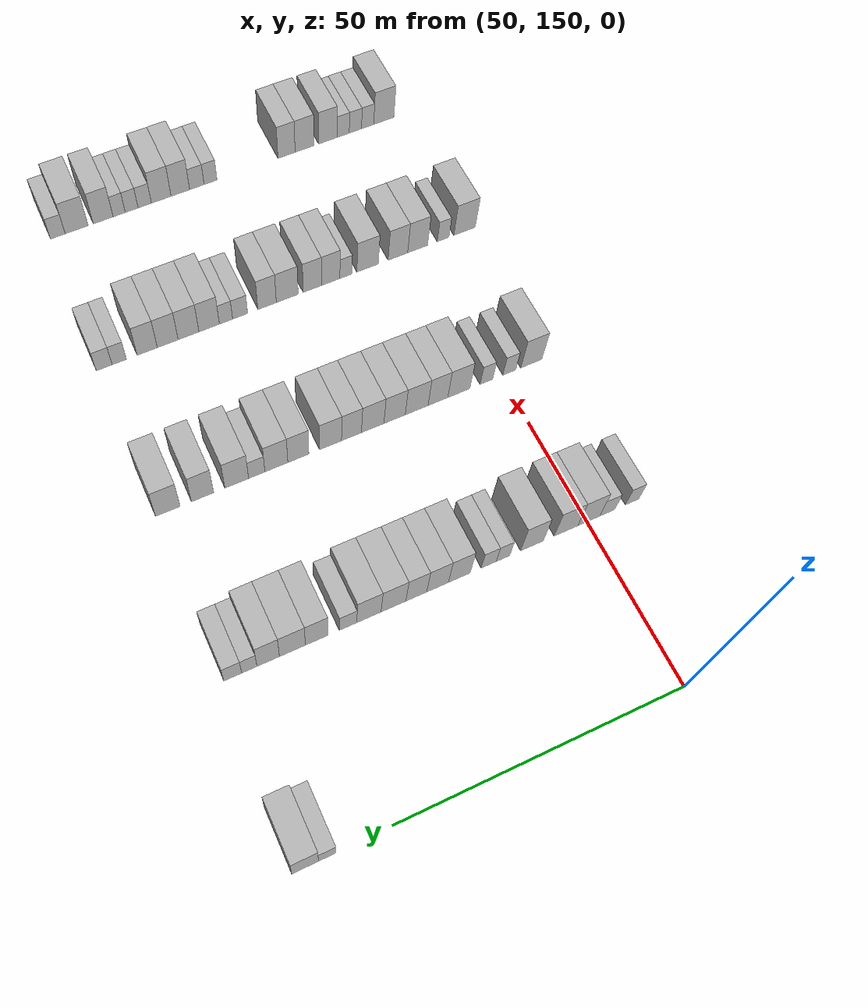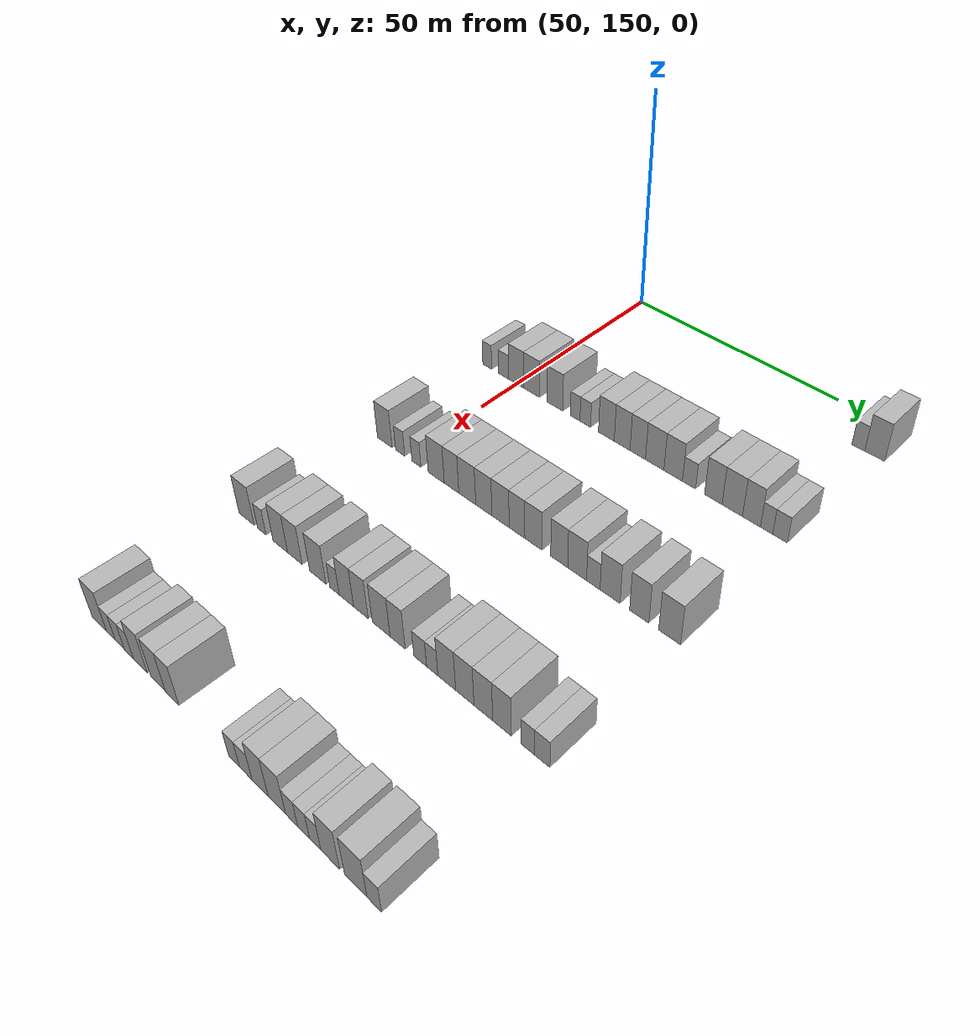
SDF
<sdf version="1.6">
 <world name="default">
  <model name="building_394">
   <static>1</static>
   <pose>55.0000 210.4319 0 0.000000 0.000000 0.000000</pose>
   <link name="link">
    <pose>0 0 3.00 0 0 0</pose>
    <collision name="collision"><geometry><box><size>10.0000 2.7586 6.0000</size></box></geometry></collision>
    <visual name="visual">
     <cast_shadows>0</cast_shadows>
     <geometry><box><size>10.0000 2.7586 6.0000</size></box></geometry>
     <material>
      <script>
       <uri>model://HANNAS_wall/materials/scripts</uri>
       <uri>model://HANNAS_wall/materials/textures</uri>
       <name>vrc/HANNAS_wall</name>
      </script>
     </material>
    </visual>
   </link>
  </model>
  <model name="building_395">
   <static>1</static>
   <pose>55.0000 213.9026 0 0.000000 0.000000 0.000000</pose>
   <link name="link">
    <pose>0 0 4.50 0 0 0</pose>
    <collision name="collision"><geometry><box><size>10.0000 4.1828 9.0000</size></box></geometry></collision>
    <visual name="visual">
     <cast_shadows>0</cast_shadows>
     <geometry><box><size>10.0000 4.1828 9.0000</size></box></geometry>
     <material>
      <script>
       <uri>model://HANNAS_wall/materials/scripts</uri>
       <uri>model://HANNAS_wall/materials/textures</uri>
       <name>vrc/HANNAS_wall</name>
      </script>
     </material>
    </visual>
   </link>
  </model>
  <model name="building_594">
   <static>1</static>
   <pose>85.0000 141.4963 0 0.000000 0.000000 0.000000</pose>
   <link name="link">
    <pose>0 0 3.00 0 0 0</pose>
    <collision name="collision"><geometry><box><size>10.0000 2.5797 6.0000</size></box></geometry></collision>
    <visual name="visual">
     <cast_shadows>0</cast_shadows>
     <geometry><box><size>10.0000 2.5797 6.0000</size></box></geometry>
     <material>
      <script>
       <uri>model://HANNAS_wall/materials/scripts</uri>
       <uri>model://HANNAS_wall/materials/textures</uri>
       <name>vrc/HANNAS_wall</name>
      </script>
     </material>
    </visual>
   </link>
  </model>
  <model name="building_595">
   <static>1</static>
   <pose>85.0000 146.2137 0 0.000000 0.000000 0.000000</pose>
   <link name="link">
    <pose>0 0 3.00 0 0 0</pose>
    <collision name="collision"><geometry><box><size>10.0000 2.8551 6.0000</size></box></geometry></collision>
    <visual name="visual">
     <cast_shadows>0</cast_shadows>
     <geometry><box><size>10.0000 2.8551 6.0000</size></box></geometry>
     <material>
      <script>
       <uri>model://HANNAS_wall/materials/scripts</uri>
       <uri>model://HANNAS_wall/materials/textures</uri>
       <name>vrc/HANNAS_wall</name>
      </script>
     </material>
    </visual>
   </link>
  </model>
  <model name="building_596">
   <static>1</static>
   <pose>85.0000 149.7232 0 0.000000 0.000000 0.000000</pose>
   <link name="link">
    <pose>0 0 4.50 0 0 0</pose>
    <collision name="collision"><geometry><box><size>10.0000 4.1639 9.0000</size></box></geometry></collision>
    <visual name="visual">
     <cast_shadows>0</cast_shadows>
     <geometry><box><size>10.0000 4.1639 9.0000</size></box></geometry>
     <material>
      <script>
       <uri>model://HANNAS_wall/materials/scripts</uri>
       <uri>model://HANNAS_wall/materials/textures</uri>
       <name>vrc/HANNAS_wall</name>
      </script>
     </material>
    </visual>
   </link>
  </model>
  <model name="building_597">
   <static>1</static>
   <pose>85.0000 154.0186 0 0.000000 0.000000 0.000000</pose>
   <link name="link">
    <pose>0 0 4.50 0 0 0</pose>
    <collision name="collision"><geometry><box><size>10.0000 4.4270 9.0000</size></box></geometry></collision>
    <visual name="visual">
     <cast_shadows>0</cast_shadows>
     <geometry><box><size>10.0000 4.4270 9.0000</size></box></geometry>
     <material>
      <script>
       <uri>model://HANNAS_wall/materials/scripts</uri>
       <uri>model://HANNAS_wall/materials/textures</uri>
       <name>vrc/HANNAS_wall</name>
      </script>
     </material>
    </visual>
   </link>
  </model>
  <model name="building_598">
   <static>1</static>
   <pose>85.0000 160.3365 0 0.000000 0.000000 0.000000</pose>
   <link name="link">
    <pose>0 0 4.50 0 0 0</pose>
    <collision name="collision"><geometry><box><size>10.0000 4.2088 9.0000</size></box></geometry></collision>
    <visual name="visual">
     <cast_shadows>0</cast_shadows>
     <geometry><box><size>10.0000 4.2088 9.0000</size></box></geometry>
     <material>
      <script>
       <uri>model://HANNAS_wall/materials/scripts</uri>
       <uri>model://HANNAS_wall/materials/textures</uri>
       <name>vrc/HANNAS_wall</name>
      </script>
     </material>
    </visual>
   </link>
  </model>
  <model name="building_599">
   <static>1</static>
   <pose>85.0000 165.6779 0 0.000000 0.000000 0.000000</pose>
   <link name="link">
    <pose>0 0 3.00 0 0 0</pose>
    <collision name="collision"><geometry><box><size>10.0000 2.4739 6.0000</size></box></geometry></collision>
    <visual name="visual">
     <cast_shadows>0</cast_shadows>
     <geometry><box><size>10.0000 2.4739 6.0000</size></box></geometry>
     <material>
      <script>
       <uri>model://HANNAS_wall/materials/scripts</uri>
       <uri>model://HANNAS_wall/materials/textures</uri>
       <name>vrc/HANNAS_wall</name>
      </script>
     </material>
    </visual>
   </link>
  </model>
  <model name="building_600">
   <static>1</static>
   <pose>85.0000 168.2797 0 0.000000 0.000000 0.000000</pose>
   <link name="link">
    <pose>0 0 3.00 0 0 0</pose>
    <collision name="collision"><geometry><box><size>10.0000 2.7296 6.0000</size></box></geometry></collision>
    <visual name="visual">
     <cast_shadows>0</cast_shadows>
     <geometry><box><size>10.0000 2.7296 6.0000</size></box></geometry>
     <material>
      <script>
       <uri>model://HANNAS_wall/materials/scripts</uri>
       <uri>model://HANNAS_wall/materials/textures</uri>
       <name>vrc/HANNAS_wall</name>
      </script>
     </material>
    </visual>
   </link>
  </model>
  <model name="building_601">
   <static>1</static>
   <pose>85.0000 173.6123 0 0.000000 0.000000 0.000000</pose>
   <link name="link">
    <pose>0 0 4.50 0 0 0</pose>
    <collision name="collision"><geometry><box><size>10.0000 3.9356 9.0000</size></box></geometry></collision>
    <visual name="visual">
     <cast_shadows>0</cast_shadows>
     <geometry><box><size>10.0000 3.9356 9.0000</size></box></geometry>
     <material>
      <script>
       <uri>model://HANNAS_wall/materials/scripts</uri>
       <uri>model://HANNAS_wall/materials/textures</uri>
       <name>vrc/HANNAS_wall</name>
      </script>
     </material>
    </visual>
   </link>
  </model>
  <model name="building_602">
   <static>1</static>
   <pose>85.0000 177.5138 0 0.000000 0.000000 0.000000</pose>
   <link name="link">
    <pose>0 0 4.50 0 0 0</pose>
    <collision name="collision"><geometry><box><size>10.0000 3.8674 9.0000</size></box></geometry></collision>
    <visual name="visual">
     <cast_shadows>0</cast_shadows>
     <geometry><box><size>10.0000 3.8674 9.0000</size></box></geometry>
     <material>
      <script>
       <uri>model://HANNAS_wall/materials/scripts</uri>
       <uri>model://HANNAS_wall/materials/textures</uri>
       <name>vrc/HANNAS_wall</name>
      </script>
     </material>
    </visual>
   </link>
  </model>
  <model name="building_603">
   <static>1</static>
   <pose>85.0000 181.3014 0 0.000000 0.000000 0.000000</pose>
   <link name="link">
    <pose>0 0 4.50 0 0 0</pose>
    <collision name="collision"><geometry><box><size>10.0000 3.7079 9.0000</size></box></geometry></collision>
    <visual name="visual">
     <cast_shadows>0</cast_shadows>
     <geometry><box><size>10.0000 3.7079 9.0000</size></box></geometry>
     <material>
      <script>
       <uri>model://HANNAS_wall/materials/scripts</uri>
       <uri>model://HANNAS_wall/materials/textures</uri>
       <name>vrc/HANNAS_wall</name>
      </script>
     </material>
    </visual>
   </link>
  </model>
  <model name="building_604">
   <static>1</static>
   <pose>85.0000 185.3421 0 0.000000 0.000000 0.000000</pose>
   <link name="link">
    <pose>0 0 4.50 0 0 0</pose>
    <collision name="collision"><geometry><box><size>10.0000 4.3735 9.0000</size></box></geometry></collision>
    <visual name="visual">
     <cast_shadows>0</cast_shadows>
     <geometry><box><size>10.0000 4.3735 9.0000</size></box></geometry>
     <material>
      <script>
       <uri>model://HANNAS_wall/materials/scripts</uri>
       <uri>model://HANNAS_wall/materials/textures</uri>
       <name>vrc/HANNAS_wall</name>
      </script>
     </material>
    </visual>
   </link>
  </model>
  <model name="building_605">
   <static>1</static>
   <pose>85.0000 189.6635 0 0.000000 0.000000 0.000000</pose>
   <link name="link">
    <pose>0 0 4.50 0 0 0</pose>
    <collision name="collision"><geometry><box><size>10.0000 4.2693 9.0000</size></box></geometry></collision>
    <visual name="visual">
     <cast_shadows>0</cast_shadows>
     <geometry><box><size>10.0000 4.2693 9.0000</size></box></geometry>
     <material>
      <script>
       <uri>model://HANNAS_wall/materials/scripts</uri>
       <uri>model://HANNAS_wall/materials/textures</uri>
       <name>vrc/HANNAS_wall</name>
      </script>
     </material>
    </visual>
   </link>
  </model>
  <model name="building_606">
   <static>1</static>
   <pose>85.0000 193.2931 0 0.000000 0.000000 0.000000</pose>
   <link name="link">
    <pose>0 0 3.00 0 0 0</pose>
    <collision name="collision"><geometry><box><size>10.0000 2.9898 6.0000</size></box></geometry></collision>
    <visual name="visual">
     <cast_shadows>0</cast_shadows>
     <geometry><box><size>10.0000 2.9898 6.0000</size></box></geometry>
     <material>
      <script>
       <uri>model://HANNAS_wall/materials/scripts</uri>
       <uri>model://HANNAS_wall/materials/textures</uri>
       <name>vrc/HANNAS_wall</name>
      </script>
     </material>
    </visual>
   </link>
  </model>
  <model name="building_607">
   <static>1</static>
   <pose>85.0000 198.7108 0 0.000000 0.000000 0.000000</pose>
   <link name="link">
    <pose>0 0 4.50 0 0 0</pose>
    <collision name="collision"><geometry><box><size>10.0000 3.8455 9.0000</size></box></geometry></collision>
    <visual name="visual">
     <cast_shadows>0</cast_shadows>
     <geometry><box><size>10.0000 3.8455 9.0000</size></box></geometry>
     <material>
      <script>
       <uri>model://HANNAS_wall/materials/scripts</uri>
       <uri>model://HANNAS_wall/materials/textures</uri>
       <name>vrc/HANNAS_wall</name>
      </script>
     </material>
    </visual>
   </link>
  </model>
  <model name="building_608">
   <static>1</static>
   <pose>85.0000 202.8349 0 0.000000 0.000000 0.000000</pose>
   <link name="link">
    <pose>0 0 4.50 0 0 0</pose>
    <collision name="collision"><geometry><box><size>10.0000 4.4026 9.0000</size></box></geometry></collision>
    <visual name="visual">
     <cast_shadows>0</cast_shadows>
     <geometry><box><size>10.0000 4.4026 9.0000</size></box></geometry>
     <material>
      <script>
       <uri>model://HANNAS_wall/materials/scripts</uri>
       <uri>model://HANNAS_wall/materials/textures</uri>
       <name>vrc/HANNAS_wall</name>
      </script>
     </material>
    </visual>
   </link>
  </model>
  <model name="building_609">
   <static>1</static>
   <pose>85.0000 206.9310 0 0.000000 0.000000 0.000000</pose>
   <link name="link">
    <pose>0 0 4.50 0 0 0</pose>
    <collision name="collision"><geometry><box><size>10.0000 3.7896 9.0000</size></box></geometry></collision>
    <visual name="visual">
     <cast_shadows>0</cast_shadows>
     <geometry><box><size>10.0000 3.7896 9.0000</size></box></geometry>
     <material>
      <script>
       <uri>model://HANNAS_wall/materials/scripts</uri>
       <uri>model://HANNAS_wall/materials/textures</uri>
       <name>vrc/HANNAS_wall</name>
      </script>
     </material>
    </visual>
   </link>
  </model>
  <model name="building_610">
   <static>1</static>
   <pose>85.0000 210.0977 0 0.000000 0.000000 0.000000</pose>
   <link name="link">
    <pose>0 0 3.00 0 0 0</pose>
    <collision name="collision"><geometry><box><size>10.0000 2.5438 6.0000</size></box></geometry></collision>
    <visual name="visual">
     <cast_shadows>0</cast_shadows>
     <geometry><box><size>10.0000 2.5438 6.0000</size></box></geometry>
     <material>
      <script>
       <uri>model://HANNAS_wall/materials/scripts</uri>
       <uri>model://HANNAS_wall/materials/textures</uri>
       <name>vrc/HANNAS_wall</name>
      </script>
     </material>
    </visual>
   </link>
  </model>
  <model name="building_611">
   <static>1</static>
   <pose>85.0000 212.8687 0 0.000000 0.000000 0.000000</pose>
   <link name="link">
    <pose>0 0 3.00 0 0 0</pose>
    <collision name="collision"><geometry><box><size>10.0000 2.9982 6.0000</size></box></geometry></collision>
    <visual name="visual">
     <cast_shadows>0</cast_shadows>
     <geometry><box><size>10.0000 2.9982 6.0000</size></box></geometry>
     <material>
      <script>
       <uri>model://HANNAS_wall/materials/scripts</uri>
       <uri>model://HANNAS_wall/materials/textures</uri>
       <name>vrc/HANNAS_wall</name>
      </script>
     </material>
    </visual>
   </link>
  </model>
  <model name="building_833">
   <static>1</static>
   <pose>115.0000 144.0599 0 0.000000 0.000000 0.000000</pose>
   <link name="link">
    <pose>0 0 4.50 0 0 0</pose>
    <collision name="collision"><geometry><box><size>10.0000 4.1930 9.0000</size></box></geometry></collision>
    <visual name="visual">
     <cast_shadows>0</cast_shadows>
     <geometry><box><size>10.0000 4.1930 9.0000</size></box></geometry>
     <material>
      <script>
       <uri>model://HANNAS_wall/materials/scripts</uri>
       <uri>model://HANNAS_wall/materials/textures</uri>
       <name>vrc/HANNAS_wall</name>
      </script>
     </material>
    </visual>
   </link>
  </model>
  <model name="building_834">
   <static>1</static>
   <pose>115.0000 148.4312 0 0.000000 0.000000 0.000000</pose>
   <link name="link">
    <pose>0 0 3.00 0 0 0</pose>
    <collision name="collision"><geometry><box><size>10.0000 2.5495 6.0000</size></box></geometry></collision>
    <visual name="visual">
     <cast_shadows>0</cast_shadows>
     <geometry><box><size>10.0000 2.5495 6.0000</size></box></geometry>
     <material>
      <script>
       <uri>model://HANNAS_wall/materials/scripts</uri>
       <uri>model://HANNAS_wall/materials/textures</uri>
       <name>vrc/HANNAS_wall</name>
      </script>
     </material>
    </visual>
   </link>
  </model>
  <model name="building_835">
   <static>1</static>
   <pose>115.0000 152.9456 0 0.000000 0.000000 0.000000</pose>
   <link name="link">
    <pose>0 0 3.00 0 0 0</pose>
    <collision name="collision"><geometry><box><size>10.0000 2.4793 6.0000</size></box></geometry></collision>
    <visual name="visual">
     <cast_shadows>0</cast_shadows>
     <geometry><box><size>10.0000 2.4793 6.0000</size></box></geometry>
     <material>
      <script>
       <uri>model://HANNAS_wall/materials/scripts</uri>
       <uri>model://HANNAS_wall/materials/textures</uri>
       <name>vrc/HANNAS_wall</name>
      </script>
     </material>
    </visual>
   </link>
  </model>
  <model name="building_836">
   <static>1</static>
   <pose>115.0000 158.3269 0 0.000000 0.000000 0.000000</pose>
   <link name="link">
    <pose>0 0 4.50 0 0 0</pose>
    <collision name="collision"><geometry><box><size>10.0000 4.2833 9.0000</size></box></geometry></collision>
    <visual name="visual">
     <cast_shadows>0</cast_shadows>
     <geometry><box><size>10.0000 4.2833 9.0000</size></box></geometry>
     <material>
      <script>
       <uri>model://HANNAS_wall/materials/scripts</uri>
       <uri>model://HANNAS_wall/materials/textures</uri>
       <name>vrc/HANNAS_wall</name>
      </script>
     </material>
    </visual>
   </link>
  </model>
  <model name="building_837">
   <static>1</static>
   <pose>115.0000 162.3728 0 0.000000 0.000000 0.000000</pose>
   <link name="link">
    <pose>0 0 4.50 0 0 0</pose>
    <collision name="collision"><geometry><box><size>10.0000 3.8085 9.0000</size></box></geometry></collision>
    <visual name="visual">
     <cast_shadows>0</cast_shadows>
     <geometry><box><size>10.0000 3.8085 9.0000</size></box></geometry>
     <material>
      <script>
       <uri>model://HANNAS_wall/materials/scripts</uri>
       <uri>model://HANNAS_wall/materials/textures</uri>
       <name>vrc/HANNAS_wall</name>
      </script>
     </material>
    </visual>
   </link>
  </model>
  <model name="building_838">
   <static>1</static>
   <pose>115.0000 166.4594 0 0.000000 0.000000 0.000000</pose>
   <link name="link">
    <pose>0 0 4.50 0 0 0</pose>
    <collision name="collision"><geometry><box><size>10.0000 4.3647 9.0000</size></box></geometry></collision>
    <visual name="visual">
     <cast_shadows>0</cast_shadows>
     <geometry><box><size>10.0000 4.3647 9.0000</size></box></geometry>
     <material>
      <script>
       <uri>model://HANNAS_wall/materials/scripts</uri>
       <uri>model://HANNAS_wall/materials/textures</uri>
       <name>vrc/HANNAS_wall</name>
      </script>
     </material>
    </visual>
   </link>
  </model>
  <model name="building_839">
   <static>1</static>
   <pose>115.0000 170.6739 0 0.000000 0.000000 0.000000</pose>
   <link name="link">
    <pose>0 0 4.50 0 0 0</pose>
    <collision name="collision"><geometry><box><size>10.0000 4.0645 9.0000</size></box></geometry></collision>
    <visual name="visual">
     <cast_shadows>0</cast_shadows>
     <geometry><box><size>10.0000 4.0645 9.0000</size></box></geometry>
     <material>
      <script>
       <uri>model://HANNAS_wall/materials/scripts</uri>
       <uri>model://HANNAS_wall/materials/textures</uri>
       <name>vrc/HANNAS_wall</name>
      </script>
     </material>
    </visual>
   </link>
  </model>
  <model name="building_840">
   <static>1</static>
   <pose>115.0000 174.8283 0 0.000000 0.000000 0.000000</pose>
   <link name="link">
    <pose>0 0 4.50 0 0 0</pose>
    <collision name="collision"><geometry><box><size>10.0000 4.2442 9.0000</size></box></geometry></collision>
    <visual name="visual">
     <cast_shadows>0</cast_shadows>
     <geometry><box><size>10.0000 4.2442 9.0000</size></box></geometry>
     <material>
      <script>
       <uri>model://HANNAS_wall/materials/scripts</uri>
       <uri>model://HANNAS_wall/materials/textures</uri>
       <name>vrc/HANNAS_wall</name>
      </script>
     </material>
    </visual>
   </link>
  </model>
  <model name="building_841">
   <static>1</static>
   <pose>115.0000 178.8194 0 0.000000 0.000000 0.000000</pose>
   <link name="link">
    <pose>0 0 4.50 0 0 0</pose>
    <collision name="collision"><geometry><box><size>10.0000 3.7380 9.0000</size></box></geometry></collision>
    <visual name="visual">
     <cast_shadows>0</cast_shadows>
     <geometry><box><size>10.0000 3.7380 9.0000</size></box></geometry>
     <material>
      <script>
       <uri>model://HANNAS_wall/materials/scripts</uri>
       <uri>model://HANNAS_wall/materials/textures</uri>
       <name>vrc/HANNAS_wall</name>
      </script>
     </material>
    </visual>
   </link>
  </model>
  <model name="building_842">
   <static>1</static>
   <pose>115.0000 182.7182 0 0.000000 0.000000 0.000000</pose>
   <link name="link">
    <pose>0 0 4.50 0 0 0</pose>
    <collision name="collision"><geometry><box><size>10.0000 4.0596 9.0000</size></box></geometry></collision>
    <visual name="visual">
     <cast_shadows>0</cast_shadows>
     <geometry><box><size>10.0000 4.0596 9.0000</size></box></geometry>
     <material>
      <script>
       <uri>model://HANNAS_wall/materials/scripts</uri>
       <uri>model://HANNAS_wall/materials/textures</uri>
       <name>vrc/HANNAS_wall</name>
      </script>
     </material>
    </visual>
   </link>
  </model>
  <model name="building_843">
   <static>1</static>
   <pose>115.0000 188.6762 0 0.000000 0.000000 0.000000</pose>
   <link name="link">
    <pose>0 0 4.50 0 0 0</pose>
    <collision name="collision"><geometry><box><size>10.0000 3.8563 9.0000</size></box></geometry></collision>
    <visual name="visual">
     <cast_shadows>0</cast_shadows>
     <geometry><box><size>10.0000 3.8563 9.0000</size></box></geometry>
     <material>
      <script>
       <uri>model://HANNAS_wall/materials/scripts</uri>
       <uri>model://HANNAS_wall/materials/textures</uri>
       <name>vrc/HANNAS_wall</name>
      </script>
     </material>
    </visual>
   </link>
  </model>
  <model name="building_844">
   <static>1</static>
   <pose>115.0000 192.7022 0 0.000000 0.000000 0.000000</pose>
   <link name="link">
    <pose>0 0 4.50 0 0 0</pose>
    <collision name="collision"><geometry><box><size>10.0000 4.1956 9.0000</size></box></geometry></collision>
    <visual name="visual">
     <cast_shadows>0</cast_shadows>
     <geometry><box><size>10.0000 4.1956 9.0000</size></box></geometry>
     <material>
      <script>
       <uri>model://HANNAS_wall/materials/scripts</uri>
       <uri>model://HANNAS_wall/materials/textures</uri>
       <name>vrc/HANNAS_wall</name>
      </script>
     </material>
    </visual>
   </link>
  </model>
  <model name="building_845">
   <static>1</static>
   <pose>115.0000 196.2737 0 0.000000 0.000000 0.000000</pose>
   <link name="link">
    <pose>0 0 3.00 0 0 0</pose>
    <collision name="collision"><geometry><box><size>10.0000 2.9474 6.0000</size></box></geometry></collision>
    <visual name="visual">
     <cast_shadows>0</cast_shadows>
     <geometry><box><size>10.0000 2.9474 6.0000</size></box></geometry>
     <material>
      <script>
       <uri>model://HANNAS_wall/materials/scripts</uri>
       <uri>model://HANNAS_wall/materials/textures</uri>
       <name>vrc/HANNAS_wall</name>
      </script>
     </material>
    </visual>
   </link>
  </model>
  <model name="building_846">
   <static>1</static>
   <pose>115.0000 199.8882 0 0.000000 0.000000 0.000000</pose>
   <link name="link">
    <pose>0 0 4.50 0 0 0</pose>
    <collision name="collision"><geometry><box><size>10.0000 4.2815 9.0000</size></box></geometry></collision>
    <visual name="visual">
     <cast_shadows>0</cast_shadows>
     <geometry><box><size>10.0000 4.2815 9.0000</size></box></geometry>
     <material>
      <script>
       <uri>model://HANNAS_wall/materials/scripts</uri>
       <uri>model://HANNAS_wall/materials/textures</uri>
       <name>vrc/HANNAS_wall</name>
      </script>
     </material>
    </visual>
   </link>
  </model>
  <model name="building_847">
   <static>1</static>
   <pose>115.0000 206.0147 0 0.000000 0.000000 0.000000</pose>
   <link name="link">
    <pose>0 0 4.50 0 0 0</pose>
    <collision name="collision"><geometry><box><size>10.0000 3.9717 9.0000</size></box></geometry></collision>
    <visual name="visual">
     <cast_shadows>0</cast_shadows>
     <geometry><box><size>10.0000 3.9717 9.0000</size></box></geometry>
     <material>
      <script>
       <uri>model://HANNAS_wall/materials/scripts</uri>
       <uri>model://HANNAS_wall/materials/textures</uri>
       <name>vrc/HANNAS_wall</name>
      </script>
     </material>
    </visual>
   </link>
  </model>
  <model name="building_848">
   <static>1</static>
   <pose>115.0000 212.1743 0 0.000000 0.000000 0.000000</pose>
   <link name="link">
    <pose>0 0 4.50 0 0 0</pose>
    <collision name="collision"><geometry><box><size>10.0000 4.3474 9.0000</size></box></geometry></collision>
    <visual name="visual">
     <cast_shadows>0</cast_shadows>
     <geometry><box><size>10.0000 4.3474 9.0000</size></box></geometry>
     <material>
      <script>
       <uri>model://HANNAS_wall/materials/scripts</uri>
       <uri>model://HANNAS_wall/materials/textures</uri>
       <name>vrc/HANNAS_wall</name>
      </script>
     </material>
    </visual>
   </link>
  </model>
  <model name="building_1046">
   <static>1</static>
   <pose>145.0000 141.7772 0 0.000000 0.000000 0.000000</pose>
   <link name="link">
    <pose>0 0 4.50 0 0 0</pose>
    <collision name="collision"><geometry><box><size>10.0000 4.4680 9.0000</size></box></geometry></collision>
    <visual name="visual">
     <cast_shadows>0</cast_shadows>
     <geometry><box><size>10.0000 4.4680 9.0000</size></box></geometry>
     <material>
      <script>
       <uri>model://HANNAS_wall/materials/scripts</uri>
       <uri>model://HANNAS_wall/materials/textures</uri>
       <name>vrc/HANNAS_wall</name>
      </script>
     </material>
    </visual>
   </link>
  </model>
  <model name="building_1047">
   <static>1</static>
   <pose>145.0000 146.2325 0 0.000000 0.000000 0.000000</pose>
   <link name="link">
    <pose>0 0 3.00 0 0 0</pose>
    <collision name="collision"><geometry><box><size>10.0000 2.4426 6.0000</size></box></geometry></collision>
    <visual name="visual">
     <cast_shadows>0</cast_shadows>
     <geometry><box><size>10.0000 2.4426 6.0000</size></box></geometry>
     <material>
      <script>
       <uri>model://HANNAS_wall/materials/scripts</uri>
       <uri>model://HANNAS_wall/materials/textures</uri>
       <name>vrc/HANNAS_wall</name>
      </script>
     </material>
    </visual>
   </link>
  </model>
  <model name="building_1048">
   <static>1</static>
   <pose>145.0000 151.5020 0 0.000000 0.000000 0.000000</pose>
   <link name="link">
    <pose>0 0 4.50 0 0 0</pose>
    <collision name="collision"><geometry><box><size>10.0000 4.0964 9.0000</size></box></geometry></collision>
    <visual name="visual">
     <cast_shadows>0</cast_shadows>
     <geometry><box><size>10.0000 4.0964 9.0000</size></box></geometry>
     <material>
      <script>
       <uri>model://HANNAS_wall/materials/scripts</uri>
       <uri>model://HANNAS_wall/materials/textures</uri>
       <name>vrc/HANNAS_wall</name>
      </script>
     </material>
    </visual>
   </link>
  </model>
  <model name="building_1049">
   <static>1</static>
   <pose>145.0000 155.5487 0 0.000000 0.000000 0.000000</pose>
   <link name="link">
    <pose>0 0 4.50 0 0 0</pose>
    <collision name="collision"><geometry><box><size>10.0000 3.9970 9.0000</size></box></geometry></collision>
    <visual name="visual">
     <cast_shadows>0</cast_shadows>
     <geometry><box><size>10.0000 3.9970 9.0000</size></box></geometry>
     <material>
      <script>
       <uri>model://HANNAS_wall/materials/scripts</uri>
       <uri>model://HANNAS_wall/materials/textures</uri>
       <name>vrc/HANNAS_wall</name>
      </script>
     </material>
    </visual>
   </link>
  </model>
  <model name="building_1050">
   <static>1</static>
   <pose>145.0000 161.7127 0 0.000000 0.000000 0.000000</pose>
   <link name="link">
    <pose>0 0 4.50 0 0 0</pose>
    <collision name="collision"><geometry><box><size>10.0000 4.3311 9.0000</size></box></geometry></collision>
    <visual name="visual">
     <cast_shadows>0</cast_shadows>
     <geometry><box><size>10.0000 4.3311 9.0000</size></box></geometry>
     <material>
      <script>
       <uri>model://HANNAS_wall/materials/scripts</uri>
       <uri>model://HANNAS_wall/materials/textures</uri>
       <name>vrc/HANNAS_wall</name>
      </script>
     </material>
    </visual>
   </link>
  </model>
  <model name="building_1051">
   <static>1</static>
   <pose>145.0000 166.0848 0 0.000000 0.000000 0.000000</pose>
   <link name="link">
    <pose>0 0 3.00 0 0 0</pose>
    <collision name="collision"><geometry><box><size>10.0000 2.4131 6.0000</size></box></geometry></collision>
    <visual name="visual">
     <cast_shadows>0</cast_shadows>
     <geometry><box><size>10.0000 2.4131 6.0000</size></box></geometry>
     <material>
      <script>
       <uri>model://HANNAS_wall/materials/scripts</uri>
       <uri>model://HANNAS_wall/materials/textures</uri>
       <name>vrc/HANNAS_wall</name>
      </script>
     </material>
    </visual>
   </link>
  </model>
  <model name="building_1052">
   <static>1</static>
   <pose>145.0000 169.1240 0 0.000000 0.000000 0.000000</pose>
   <link name="link">
    <pose>0 0 4.50 0 0 0</pose>
    <collision name="collision"><geometry><box><size>10.0000 3.6652 9.0000</size></box></geometry></collision>
    <visual name="visual">
     <cast_shadows>0</cast_shadows>
     <geometry><box><size>10.0000 3.6652 9.0000</size></box></geometry>
     <material>
      <script>
       <uri>model://HANNAS_wall/materials/scripts</uri>
       <uri>model://HANNAS_wall/materials/textures</uri>
       <name>vrc/HANNAS_wall</name>
      </script>
     </material>
    </visual>
   </link>
  </model>
  <model name="building_1053">
   <static>1</static>
   <pose>145.0000 172.7754 0 0.000000 0.000000 0.000000</pose>
   <link name="link">
    <pose>0 0 4.50 0 0 0</pose>
    <collision name="collision"><geometry><box><size>10.0000 3.6375 9.0000</size></box></geometry></collision>
    <visual name="visual">
     <cast_shadows>0</cast_shadows>
     <geometry><box><size>10.0000 3.6375 9.0000</size></box></geometry>
     <material>
      <script>
       <uri>model://HANNAS_wall/materials/scripts</uri>
       <uri>model://HANNAS_wall/materials/textures</uri>
       <name>vrc/HANNAS_wall</name>
      </script>
     </material>
    </visual>
   </link>
  </model>
  <model name="building_1054">
   <static>1</static>
   <pose>145.0000 177.7369 0 0.000000 0.000000 0.000000</pose>
   <link name="link">
    <pose>0 0 4.50 0 0 0</pose>
    <collision name="collision"><geometry><box><size>10.0000 4.2854 9.0000</size></box></geometry></collision>
    <visual name="visual">
     <cast_shadows>0</cast_shadows>
     <geometry><box><size>10.0000 4.2854 9.0000</size></box></geometry>
     <material>
      <script>
       <uri>model://HANNAS_wall/materials/scripts</uri>
       <uri>model://HANNAS_wall/materials/textures</uri>
       <name>vrc/HANNAS_wall</name>
      </script>
     </material>
    </visual>
   </link>
  </model>
  <model name="building_1055">
   <static>1</static>
   <pose>145.0000 181.6798 0 0.000000 0.000000 0.000000</pose>
   <link name="link">
    <pose>0 0 4.50 0 0 0</pose>
    <collision name="collision"><geometry><box><size>10.0000 3.6005 9.0000</size></box></geometry></collision>
    <visual name="visual">
     <cast_shadows>0</cast_shadows>
     <geometry><box><size>10.0000 3.6005 9.0000</size></box></geometry>
     <material>
      <script>
       <uri>model://HANNAS_wall/materials/scripts</uri>
       <uri>model://HANNAS_wall/materials/textures</uri>
       <name>vrc/HANNAS_wall</name>
      </script>
     </material>
    </visual>
   </link>
  </model>
  <model name="building_1056">
   <static>1</static>
   <pose>145.0000 186.9318 0 0.000000 0.000000 0.000000</pose>
   <link name="link">
    <pose>0 0 3.00 0 0 0</pose>
    <collision name="collision"><geometry><box><size>10.0000 2.9033 6.0000</size></box></geometry></collision>
    <visual name="visual">
     <cast_shadows>0</cast_shadows>
     <geometry><box><size>10.0000 2.9033 6.0000</size></box></geometry>
     <material>
      <script>
       <uri>model://HANNAS_wall/materials/scripts</uri>
       <uri>model://HANNAS_wall/materials/textures</uri>
       <name>vrc/HANNAS_wall</name>
      </script>
     </material>
    </visual>
   </link>
  </model>
  <model name="building_1057">
   <static>1</static>
   <pose>145.0000 189.6560 0 0.000000 0.000000 0.000000</pose>
   <link name="link">
    <pose>0 0 3.00 0 0 0</pose>
    <collision name="collision"><geometry><box><size>10.0000 2.5452 6.0000</size></box></geometry></collision>
    <visual name="visual">
     <cast_shadows>0</cast_shadows>
     <geometry><box><size>10.0000 2.5452 6.0000</size></box></geometry>
     <material>
      <script>
       <uri>model://HANNAS_wall/materials/scripts</uri>
       <uri>model://HANNAS_wall/materials/textures</uri>
       <name>vrc/HANNAS_wall</name>
      </script>
     </material>
    </visual>
   </link>
  </model>
  <model name="building_1058">
   <static>1</static>
   <pose>145.0000 192.8866 0 0.000000 0.000000 0.000000</pose>
   <link name="link">
    <pose>0 0 4.50 0 0 0</pose>
    <collision name="collision"><geometry><box><size>10.0000 3.9160 9.0000</size></box></geometry></collision>
    <visual name="visual">
     <cast_shadows>0</cast_shadows>
     <geometry><box><size>10.0000 3.9160 9.0000</size></box></geometry>
     <material>
      <script>
       <uri>model://HANNAS_wall/materials/scripts</uri>
       <uri>model://HANNAS_wall/materials/textures</uri>
       <name>vrc/HANNAS_wall</name>
      </script>
     </material>
    </visual>
   </link>
  </model>
  <model name="building_1059">
   <static>1</static>
   <pose>145.0000 196.8220 0 0.000000 0.000000 0.000000</pose>
   <link name="link">
    <pose>0 0 4.50 0 0 0</pose>
    <collision name="collision"><geometry><box><size>10.0000 3.9548 9.0000</size></box></geometry></collision>
    <visual name="visual">
     <cast_shadows>0</cast_shadows>
     <geometry><box><size>10.0000 3.9548 9.0000</size></box></geometry>
     <material>
      <script>
       <uri>model://HANNAS_wall/materials/scripts</uri>
       <uri>model://HANNAS_wall/materials/textures</uri>
       <name>vrc/HANNAS_wall</name>
      </script>
     </material>
    </visual>
   </link>
  </model>
  <model name="building_1060">
   <static>1</static>
   <pose>145.0000 200.7681 0 0.000000 0.000000 0.000000</pose>
   <link name="link">
    <pose>0 0 4.50 0 0 0</pose>
    <collision name="collision"><geometry><box><size>10.0000 3.9374 9.0000</size></box></geometry></collision>
    <visual name="visual">
     <cast_shadows>0</cast_shadows>
     <geometry><box><size>10.0000 3.9374 9.0000</size></box></geometry>
     <material>
      <script>
       <uri>model://HANNAS_wall/materials/scripts</uri>
       <uri>model://HANNAS_wall/materials/textures</uri>
       <name>vrc/HANNAS_wall</name>
      </script>
     </material>
    </visual>
   </link>
  </model>
  <model name="building_1061">
   <static>1</static>
   <pose>145.0000 204.6347 0 0.000000 0.000000 0.000000</pose>
   <link name="link">
    <pose>0 0 4.50 0 0 0</pose>
    <collision name="collision"><geometry><box><size>10.0000 3.7959 9.0000</size></box></geometry></collision>
    <visual name="visual">
     <cast_shadows>0</cast_shadows>
     <geometry><box><size>10.0000 3.7959 9.0000</size></box></geometry>
     <material>
      <script>
       <uri>model://HANNAS_wall/materials/scripts</uri>
       <uri>model://HANNAS_wall/materials/textures</uri>
       <name>vrc/HANNAS_wall</name>
      </script>
     </material>
    </visual>
   </link>
  </model>
  <model name="building_1062">
   <static>1</static>
   <pose>145.0000 209.8596 0 0.000000 0.000000 0.000000</pose>
   <link name="link">
    <pose>0 0 3.00 0 0 0</pose>
    <collision name="collision"><geometry><box><size>10.0000 2.6539 6.0000</size></box></geometry></collision>
    <visual name="visual">
     <cast_shadows>0</cast_shadows>
     <geometry><box><size>10.0000 2.6539 6.0000</size></box></geometry>
     <material>
      <script>
       <uri>model://HANNAS_wall/materials/scripts</uri>
       <uri>model://HANNAS_wall/materials/textures</uri>
       <name>vrc/HANNAS_wall</name>
      </script>
     </material>
    </visual>
   </link>
  </model>
  <model name="building_1063">
   <static>1</static>
   <pose>145.0000 212.6600 0 0.000000 0.000000 0.000000</pose>
   <link name="link">
    <pose>0 0 3.00 0 0 0</pose>
    <collision name="collision"><geometry><box><size>10.0000 2.9469 6.0000</size></box></geometry></collision>
    <visual name="visual">
     <cast_shadows>0</cast_shadows>
     <geometry><box><size>10.0000 2.9469 6.0000</size></box></geometry>
     <material>
      <script>
       <uri>model://HANNAS_wall/materials/scripts</uri>
       <uri>model://HANNAS_wall/materials/textures</uri>
       <name>vrc/HANNAS_wall</name>
      </script>
     </material>
    </visual>
   </link>
  </model>
  <model name="building_1281">
   <static>1</static>
   <pose>175.0000 144.1204 0 0.000000 0.000000 0.000000</pose>
   <link name="link">
    <pose>0 0 4.50 0 0 0</pose>
    <collision name="collision"><geometry><box><size>10.0000 4.3628 9.0000</size></box></geometry></collision>
    <visual name="visual">
     <cast_shadows>0</cast_shadows>
     <geometry><box><size>10.0000 4.3628 9.0000</size></box></geometry>
     <material>
      <script>
       <uri>model://HANNAS_wall/materials/scripts</uri>
       <uri>model://HANNAS_wall/materials/textures</uri>
       <name>vrc/HANNAS_wall</name>
      </script>
     </material>
    </visual>
   </link>
  </model>
  <model name="building_1282">
   <static>1</static>
   <pose>175.0000 147.6211 0 0.000000 0.000000 0.000000</pose>
   <link name="link">
    <pose>0 0 3.00 0 0 0</pose>
    <collision name="collision"><geometry><box><size>10.0000 2.6386 6.0000</size></box></geometry></collision>
    <visual name="visual">
     <cast_shadows>0</cast_shadows>
     <geometry><box><size>10.0000 2.6386 6.0000</size></box></geometry>
     <material>
      <script>
       <uri>model://HANNAS_wall/materials/scripts</uri>
       <uri>model://HANNAS_wall/materials/textures</uri>
       <name>vrc/HANNAS_wall</name>
      </script>
     </material>
    </visual>
   </link>
  </model>
  <model name="building_1283">
   <static>1</static>
   <pose>175.0000 150.2596 0 0.000000 0.000000 0.000000</pose>
   <link name="link">
    <pose>0 0 3.00 0 0 0</pose>
    <collision name="collision"><geometry><box><size>10.0000 2.6383 6.0000</size></box></geometry></collision>
    <visual name="visual">
     <cast_shadows>0</cast_shadows>
     <geometry><box><size>10.0000 2.6383 6.0000</size></box></geometry>
     <material>
      <script>
       <uri>model://HANNAS_wall/materials/scripts</uri>
       <uri>model://HANNAS_wall/materials/textures</uri>
       <name>vrc/HANNAS_wall</name>
      </script>
     </material>
    </visual>
   </link>
  </model>
  <model name="building_1284">
   <static>1</static>
   <pose>175.0000 152.8857 0 0.000000 0.000000 0.000000</pose>
   <link name="link">
    <pose>0 0 3.00 0 0 0</pose>
    <collision name="collision"><geometry><box><size>10.0000 2.6140 6.0000</size></box></geometry></collision>
    <visual name="visual">
     <cast_shadows>0</cast_shadows>
     <geometry><box><size>10.0000 2.6140 6.0000</size></box></geometry>
     <material>
      <script>
       <uri>model://HANNAS_wall/materials/scripts</uri>
       <uri>model://HANNAS_wall/materials/textures</uri>
       <name>vrc/HANNAS_wall</name>
      </script>
     </material>
    </visual>
   </link>
  </model>
  <model name="building_1285">
   <static>1</static>
   <pose>175.0000 156.1558 0 0.000000 0.000000 0.000000</pose>
   <link name="link">
    <pose>0 0 4.50 0 0 0</pose>
    <collision name="collision"><geometry><box><size>10.0000 3.9261 9.0000</size></box></geometry></collision>
    <visual name="visual">
     <cast_shadows>0</cast_shadows>
     <geometry><box><size>10.0000 3.9261 9.0000</size></box></geometry>
     <material>
      <script>
       <uri>model://HANNAS_wall/materials/scripts</uri>
       <uri>model://HANNAS_wall/materials/textures</uri>
       <name>vrc/HANNAS_wall</name>
      </script>
     </material>
    </visual>
   </link>
  </model>
  <model name="building_1286">
   <static>1</static>
   <pose>175.0000 161.1056 0 0.000000 0.000000 0.000000</pose>
   <link name="link">
    <pose>0 0 4.50 0 0 0</pose>
    <collision name="collision"><geometry><box><size>10.0000 3.9735 9.0000</size></box></geometry></collision>
    <visual name="visual">
     <cast_shadows>0</cast_shadows>
     <geometry><box><size>10.0000 3.9735 9.0000</size></box></geometry>
     <material>
      <script>
       <uri>model://HANNAS_wall/materials/scripts</uri>
       <uri>model://HANNAS_wall/materials/textures</uri>
       <name>vrc/HANNAS_wall</name>
      </script>
     </material>
    </visual>
   </link>
  </model>
  <model name="building_1287">
   <static>1</static>
   <pose>175.0000 164.8970 0 0.000000 0.000000 0.000000</pose>
   <link name="link">
    <pose>0 0 4.50 0 0 0</pose>
    <collision name="collision"><geometry><box><size>10.0000 3.6093 9.0000</size></box></geometry></collision>
    <visual name="visual">
     <cast_shadows>0</cast_shadows>
     <geometry><box><size>10.0000 3.6093 9.0000</size></box></geometry>
     <material>
      <script>
       <uri>model://HANNAS_wall/materials/scripts</uri>
       <uri>model://HANNAS_wall/materials/textures</uri>
       <name>vrc/HANNAS_wall</name>
      </script>
     </material>
    </visual>
   </link>
  </model>
  <model name="building_1288">
   <static>1</static>
   <pose>175.0000 180.6674 0 0.000000 0.000000 0.000000</pose>
   <link name="link">
    <pose>0 0 3.00 0 0 0</pose>
    <collision name="collision"><geometry><box><size>10.0000 2.6438 6.0000</size></box></geometry></collision>
    <visual name="visual">
     <cast_shadows>0</cast_shadows>
     <geometry><box><size>10.0000 2.6438 6.0000</size></box></geometry>
     <material>
      <script>
       <uri>model://HANNAS_wall/materials/scripts</uri>
       <uri>model://HANNAS_wall/materials/textures</uri>
       <name>vrc/HANNAS_wall</name>
      </script>
     </material>
    </visual>
   </link>
  </model>
  <model name="building_1289">
   <static>1</static>
   <pose>175.0000 183.4601 0 0.000000 0.000000 0.000000</pose>
   <link name="link">
    <pose>0 0 3.00 0 0 0</pose>
    <collision name="collision"><geometry><box><size>10.0000 2.9417 6.0000</size></box></geometry></collision>
    <visual name="visual">
     <cast_shadows>0</cast_shadows>
     <geometry><box><size>10.0000 2.9417 6.0000</size></box></geometry>
     <material>
      <script>
       <uri>model://HANNAS_wall/materials/scripts</uri>
       <uri>model://HANNAS_wall/materials/textures</uri>
       <name>vrc/HANNAS_wall</name>
      </script>
     </material>
    </visual>
   </link>
  </model>
  <model name="building_1290">
   <static>1</static>
   <pose>175.0000 186.8137 0 0.000000 0.000000 0.000000</pose>
   <link name="link">
    <pose>0 0 4.50 0 0 0</pose>
    <collision name="collision"><geometry><box><size>10.0000 3.7655 9.0000</size></box></geometry></collision>
    <visual name="visual">
     <cast_shadows>0</cast_shadows>
     <geometry><box><size>10.0000 3.7655 9.0000</size></box></geometry>
     <material>
      <script>
       <uri>model://HANNAS_wall/materials/scripts</uri>
       <uri>model://HANNAS_wall/materials/textures</uri>
       <name>vrc/HANNAS_wall</name>
      </script>
     </material>
    </visual>
   </link>
  </model>
  <model name="building_1291">
   <static>1</static>
   <pose>175.0000 190.6767 0 0.000000 0.000000 0.000000</pose>
   <link name="link">
    <pose>0 0 4.50 0 0 0</pose>
    <collision name="collision"><geometry><box><size>10.0000 3.9605 9.0000</size></box></geometry></collision>
    <visual name="visual">
     <cast_shadows>0</cast_shadows>
     <geometry><box><size>10.0000 3.9605 9.0000</size></box></geometry>
     <material>
      <script>
       <uri>model://HANNAS_wall/materials/scripts</uri>
       <uri>model://HANNAS_wall/materials/textures</uri>
       <name>vrc/HANNAS_wall</name>
      </script>
     </material>
    </visual>
   </link>
  </model>
  <model name="building_1292">
   <static>1</static>
   <pose>175.0000 193.9897 0 0.000000 0.000000 0.000000</pose>
   <link name="link">
    <pose>0 0 3.00 0 0 0</pose>
    <collision name="collision"><geometry><box><size>10.0000 2.6655 6.0000</size></box></geometry></collision>
    <visual name="visual">
     <cast_shadows>0</cast_shadows>
     <geometry><box><size>10.0000 2.6655 6.0000</size></box></geometry>
     <material>
      <script>
       <uri>model://HANNAS_wall/materials/scripts</uri>
       <uri>model://HANNAS_wall/materials/textures</uri>
       <name>vrc/HANNAS_wall</name>
      </script>
     </material>
    </visual>
   </link>
  </model>
  <model name="building_1293">
   <static>1</static>
   <pose>175.0000 196.6017 0 0.000000 0.000000 0.000000</pose>
   <link name="link">
    <pose>0 0 3.00 0 0 0</pose>
    <collision name="collision"><geometry><box><size>10.0000 2.5585 6.0000</size></box></geometry></collision>
    <visual name="visual">
     <cast_shadows>0</cast_shadows>
     <geometry><box><size>10.0000 2.5585 6.0000</size></box></geometry>
     <material>
      <script>
       <uri>model://HANNAS_wall/materials/scripts</uri>
       <uri>model://HANNAS_wall/materials/textures</uri>
       <name>vrc/HANNAS_wall</name>
      </script>
     </material>
    </visual>
   </link>
  </model>
  <model name="building_1294">
   <static>1</static>
   <pose>175.0000 199.0886 0 0.000000 0.000000 0.000000</pose>
   <link name="link">
    <pose>0 0 3.00 0 0 0</pose>
    <collision name="collision"><geometry><box><size>10.0000 2.4153 6.0000</size></box></geometry></collision>
    <visual name="visual">
     <cast_shadows>0</cast_shadows>
     <geometry><box><size>10.0000 2.4153 6.0000</size></box></geometry>
     <material>
      <script>
       <uri>model://HANNAS_wall/materials/scripts</uri>
       <uri>model://HANNAS_wall/materials/textures</uri>
       <name>vrc/HANNAS_wall</name>
      </script>
     </material>
    </visual>
   </link>
  </model>
  <model name="building_1295">
   <static>1</static>
   <pose>175.0000 202.2593 0 0.000000 0.000000 0.000000</pose>
   <link name="link">
    <pose>0 0 4.50 0 0 0</pose>
    <collision name="collision"><geometry><box><size>10.0000 3.9261 9.0000</size></box></geometry></collision>
    <visual name="visual">
     <cast_shadows>0</cast_shadows>
     <geometry><box><size>10.0000 3.9261 9.0000</size></box></geometry>
     <material>
      <script>
       <uri>model://HANNAS_wall/materials/scripts</uri>
       <uri>model://HANNAS_wall/materials/textures</uri>
       <name>vrc/HANNAS_wall</name>
      </script>
     </material>
    </visual>
   </link>
  </model>
  <model name="building_1296">
   <static>1</static>
   <pose>175.0000 207.4711 0 0.000000 0.000000 0.000000</pose>
   <link name="link">
    <pose>0 0 4.50 0 0 0</pose>
    <collision name="collision"><geometry><box><size>10.0000 4.4975 9.0000</size></box></geometry></collision>
    <visual name="visual">
     <cast_shadows>0</cast_shadows>
     <geometry><box><size>10.0000 4.4975 9.0000</size></box></geometry>
     <material>
      <script>
       <uri>model://HANNAS_wall/materials/scripts</uri>
       <uri>model://HANNAS_wall/materials/textures</uri>
       <name>vrc/HANNAS_wall</name>
      </script>
     </material>
    </visual>
   </link>
  </model>
  <model name="building_1297">
   <static>1</static>
   <pose>175.0000 211.1615 0 0.000000 0.000000 0.000000</pose>
   <link name="link">
    <pose>0 0 3.00 0 0 0</pose>
    <collision name="collision"><geometry><box><size>10.0000 2.8832 6.0000</size></box></geometry></collision>
    <visual name="visual">
     <cast_shadows>0</cast_shadows>
     <geometry><box><size>10.0000 2.8832 6.0000</size></box></geometry>
     <material>
      <script>
       <uri>model://HANNAS_wall/materials/scripts</uri>
       <uri>model://HANNAS_wall/materials/textures</uri>
       <name>vrc/HANNAS_wall</name>
      </script>
     </material>
    </visual>
   </link>
  </model>
 </world>
</sdf>
